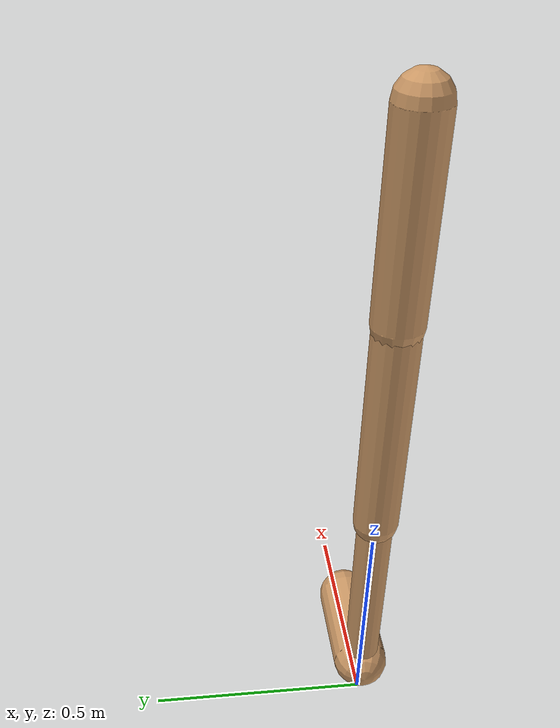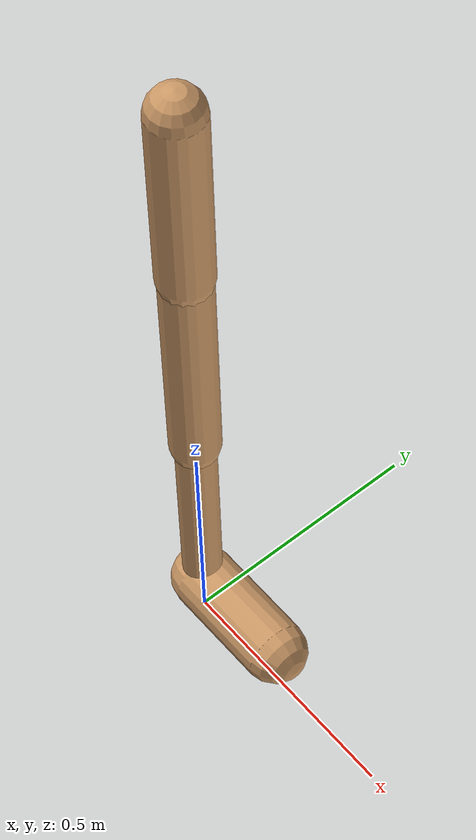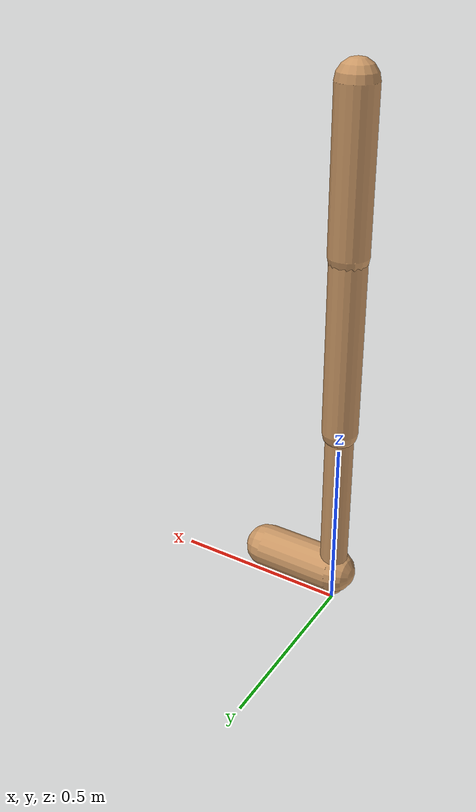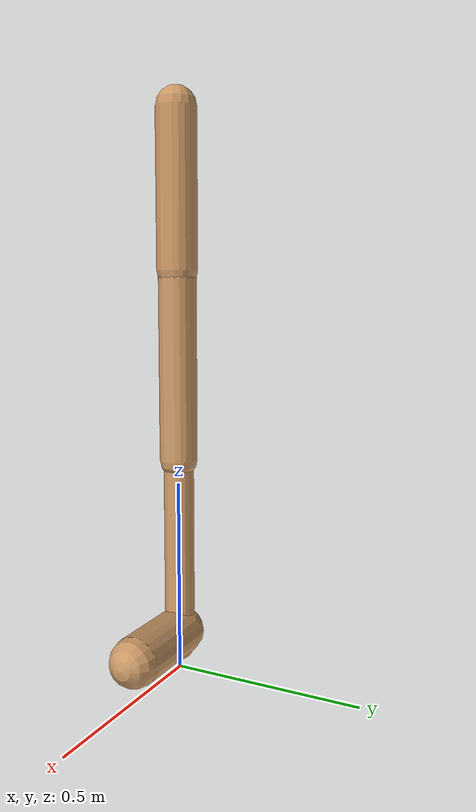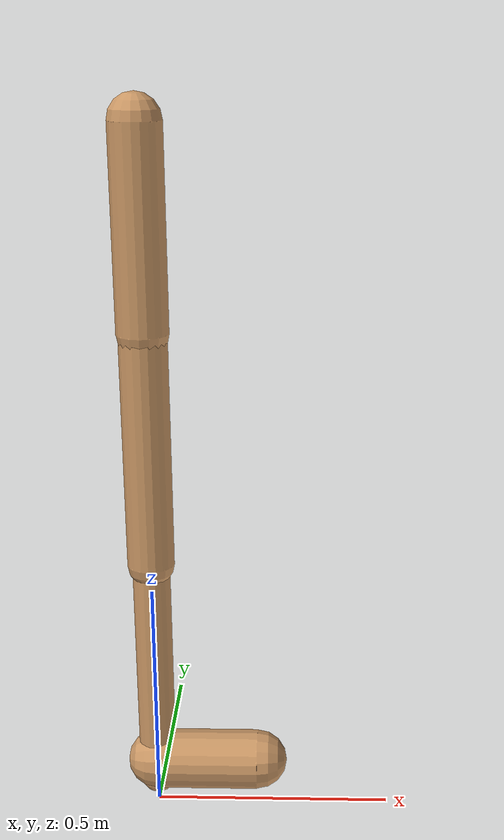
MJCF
<mujoco model="walker2d">
  <compiler angle="degree" coordinate="global" inertiafromgeom="true" />
  <default>
    <joint armature="0.01" damping=".1" limited="true" />
    <geom conaffinity="0" condim="3" contype="1" density="1000" friction="0.8 .1 .1" rgba="0.8 0.6 .4 1" />
  </default>
  <option integrator="RK4" timestep="0.002" />
  <worldbody>

    <body name="torso" pos="0 0 0.07587955940546927">
      <joint armature="0" axis="1 0 0" damping="0" limited="false" name="ignorex" pos="0 0 0" stiffness="0" type="slide" />
      <joint armature="0" axis="0 0 1" damping="0" limited="false" name="ignorez" pos="0 0 0" ref="1.25" stiffness="0" type="slide" />
      <joint armature="0" axis="0 1 0" damping="0" limited="false" name="ignorey" pos="0 0 0" stiffness="0" type="hinge" />
      <geom fromto="0 0 1.45 0 0 1.05" name="torso_geom" size="0.05241741946291428" type="capsule" />
      <body name="thigh">
        <joint axis="0 -1 0" name="thigh_joint" pos="0 0 1.05" range="-150 0" type="hinge" />
        <geom fromto="0.0 0.0 1.05 0.0 0.0 0.5640570508079356" name="thigh_geom" size="0.04884701199762939" type="capsule" />
        <body name="leg" pos="0.0 0.0 -0.03594294919206442">
          <joint axis="0 -1 0" name="leg_joint" pos="0 0 0.6" range="-150 0" type="hinge" />
          <geom fromto="0.0 0.0 0.6 0.0 0.0 0.06006338978659513" name="leg_geom" size="0.03907760959810351" type="capsule" />
          <body name="foot" pos="0.0 0.0 -0.039936610213404874">
            <joint axis="0 -1 0" name="foot_joint" pos="0 0 0.1" range="-45 45" type="hinge" />
            <geom fromto="-0.0 0.0 0.10000000000000002 0.2177682256628752 0.0 0.10000000000000002" name="foot_geom" size="0.06359697508303858" type="capsule" />
          </body>
        </body>
      </body>

      <body name="thigh_left">
        <joint axis="0 -1 0" name="thigh_left_joint" pos="0 0 1.05" range="-150 0" type="hinge" />
        <geom fromto="0.0 0.0 1.05 0.0 0.0 0.5640570508079356" name="thigh_left_geom" rgba=".7 .3 .6 1" size="0.04884701199762939" type="capsule" />
        <body name="leg_left" pos="0.0 0.0 -0.03594294919206442">
          <joint axis="0 -1 0" name="leg_left_joint" pos="0 0 0.6" range="-150 0" type="hinge" />
          <geom fromto="0.0 0.0 0.6 0.0 0.0 0.06006338978659513" name="leg_left_geom" rgba=".7 .3 .6 1" size="0.03907760959810351" type="capsule" />
          <body name="foot_left" pos="0.0 0.0 -0.039936610213404874">
            <joint axis="0 -1 0" name="foot_left_joint" pos="0 0 0.1" range="-45 45" type="hinge" />
            <geom fromto="-0.0 0.0 0.10000000000000002 0.2177682256628752 0.0 0.10000000000000002" name="foot_left_geom" rgba=".7 .3 .6 1" size="0.06359697508303858" type="capsule" />
          </body>
        </body>
      </body>
    </body>
  </worldbody>
  <actuator>

    <motor ctrllimited="true" ctrlrange="-1.0 1.0" gear="100" joint="thigh_joint" />
    <motor ctrllimited="true" ctrlrange="-1.0 1.0" gear="100" joint="leg_joint" />
    <motor ctrllimited="true" ctrlrange="-1.0 1.0" gear="100" joint="foot_joint" />
    <motor ctrllimited="true" ctrlrange="-1.0 1.0" gear="100" joint="thigh_left_joint" />
    <motor ctrllimited="true" ctrlrange="-1.0 1.0" gear="100" joint="leg_left_joint" />
    <motor ctrllimited="true" ctrlrange="-1.0 1.0" gear="100" joint="foot_left_joint" />

  </actuator>
</mujoco>
